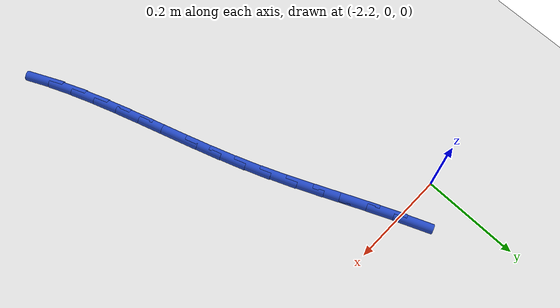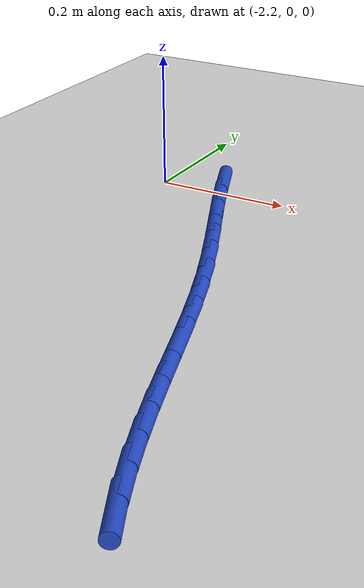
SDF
<sdf version="1.6">
 <world name="default">
  <model name="ground_plane">
   <static>1</static>
   <link name="link">
    <collision name="collision">
     <geometry><plane><normal>0 0 1</normal><size>100 100</size></plane></geometry>
     <surface><friction><ode><mu>100</mu><mu2>50</mu2></ode></friction></surface>
    </collision>
    <visual name="visual">
     <cast_shadows>0</cast_shadows>
     <geometry><plane><normal>0 0 1</normal><size>100 100</size></plane></geometry>
     <material>
      <script><uri>file://media/materials/scripts/gazebo.material</uri><name>Gazebo/WhiteGlow</name></script>
     </material>
    </visual>
   </link>
  </model>
  <model name="line">
   <link name="link_66">
    <pose>-2.112408283756555 0.026752530811789133 0.01 0 1.57 -1.1708050457385448</pose>
    <collision name="collision">
     <geometry><cylinder><radius>0.01</radius><length>0.08</length></cylinder></geometry>
    </collision>
    <visual name="visual">
     <material>
      <script><name>Gazebo/Blue</name><uri>file://media/materials/scripts/gazebo.material</uri></script>
     </material>
     <geometry><cylinder><radius>0.01</radius><length>0.08</length></cylinder></geometry>
    </visual>
   </link>
   <link name="link_67">
    <pose>-2.0910808195349517 -0.023692891978353496 0.01 0 1.57 -1.1483778470252872</pose>
    <collision name="collision">
     <geometry><cylinder><radius>0.01</radius><length>0.08</length></cylinder></geometry>
    </collision>
    <visual name="visual">
     <material>
      <script><name>Gazebo/Blue</name><uri>file://media/materials/scripts/gazebo.material</uri></script>
     </material>
     <geometry><cylinder><radius>0.01</radius><length>0.08</length></cylinder></geometry>
    </visual>
   </link>
   <link name="link_68">
    <pose>-2.068343404405174 -0.07427933248753964 0.01 0 1.57 -1.1376688885958848</pose>
    <collision name="collision">
     <geometry><cylinder><radius>0.01</radius><length>0.08</length></cylinder></geometry>
    </collision>
    <visual name="visual">
     <material>
      <script><name>Gazebo/Blue</name><uri>file://media/materials/scripts/gazebo.material</uri></script>
     </material>
     <geometry><cylinder><radius>0.01</radius><length>0.08</length></cylinder></geometry>
    </visual>
   </link>
   <link name="link_69">
    <pose>-2.0449174800324093 -0.12493965011875743 0.01 0 1.57 -1.138255176425947</pose>
    <collision name="collision">
     <geometry><cylinder><radius>0.01</radius><length>0.08</length></cylinder></geometry>
    </collision>
    <visual name="visual">
     <material>
      <script><name>Gazebo/Blue</name><uri>file://media/materials/scripts/gazebo.material</uri></script>
     </material>
     <geometry><cylinder><radius>0.01</radius><length>0.08</length></cylinder></geometry>
    </visual>
   </link>
   <link name="link_70">
    <pose>-2.0215244880818464 -0.17560670427499525 0.01 0 1.57 -1.1501527239462885</pose>
    <collision name="collision">
     <geometry><cylinder><radius>0.01</radius><length>0.08</length></cylinder></geometry>
    </collision>
    <visual name="visual">
     <material>
      <script><name>Gazebo/Blue</name><uri>file://media/materials/scripts/gazebo.material</uri></script>
     </material>
     <geometry><cylinder><radius>0.01</radius><length>0.08</length></cylinder></geometry>
    </visual>
   </link>
   <link name="link_71">
    <pose>-1.9988858702186751 -0.22621335435923895 0.01 0 1.57 -1.1737895319691143</pose>
    <collision name="collision">
     <geometry><cylinder><radius>0.01</radius><length>0.08</length></cylinder></geometry>
    </collision>
    <visual name="visual">
     <material>
      <script><name>Gazebo/Blue</name><uri>file://media/materials/scripts/gazebo.material</uri></script>
     </material>
     <geometry><cylinder><radius>0.01</radius><length>0.08</length></cylinder></geometry>
    </visual>
   </link>
   <link name="link_72">
    <pose>-1.9777215099162366 -0.27669249631231513 0.01 0 1.57 -1.204278527358556</pose>
    <collision name="collision">
     <geometry><cylinder><radius>0.01</radius><length>0.08</length></cylinder></geometry>
    </collision>
    <visual name="visual">
     <material>
      <script><name>Gazebo/Blue</name><uri>file://media/materials/scripts/gazebo.material</uri></script>
     </material>
     <geometry><cylinder><radius>0.01</radius><length>0.08</length></cylinder></geometry>
    </visual>
   </link>
   <link name="link_73">
    <pose>-1.9584161482684783 -0.32698488478516663 0.01 0 1.57 -1.2289819458210067</pose>
    <collision name="collision">
     <geometry><cylinder><radius>0.01</radius><length>0.08</length></cylinder></geometry>
    </collision>
    <visual name="visual">
     <material>
      <script><name>Gazebo/Blue</name><uri>file://media/materials/scripts/gazebo.material</uri></script>
     </material>
     <geometry><cylinder><radius>0.01</radius><length>0.08</length></cylinder></geometry>
    </visual>
   </link>
   <link name="link_74">
    <pose>-1.9406044055292317 -0.37704886391487047 0.01 0 1.57 -1.2456770098731231</pose>
    <collision name="collision">
     <geometry><cylinder><radius>0.01</radius><length>0.08</length></cylinder></geometry>
    </collision>
    <visual name="visual">
     <material>
      <script><name>Gazebo/Blue</name><uri>file://media/materials/scripts/gazebo.material</uri></script>
     </material>
     <geometry><cylinder><radius>0.01</radius><length>0.08</length></cylinder></geometry>
    </visual>
   </link>
   <link name="link_75">
    <pose>-1.9238190367491446 -0.4268451664624209 0.01 0 1.57 -1.2539678176099547</pose>
    <collision name="collision">
     <geometry><cylinder><radius>0.01</radius><length>0.08</length></cylinder></geometry>
    </collision>
    <visual name="visual">
     <material>
      <script><name>Gazebo/Blue</name><uri>file://media/materials/scripts/gazebo.material</uri></script>
     </material>
     <geometry><cylinder><radius>0.01</radius><length>0.08</length></cylinder></geometry>
    </visual>
   </link>
   <link name="link_76">
    <pose>-1.9075927969788649 -0.47633452518881025 0.01 0 1.57 -1.2535704624095692</pose>
    <collision name="collision">
     <geometry><cylinder><radius>0.01</radius><length>0.08</length></cylinder></geometry>
    </collision>
    <visual name="visual">
     <material>
      <script><name>Gazebo/Blue</name><uri>file://media/materials/scripts/gazebo.material</uri></script>
     </material>
     <geometry><cylinder><radius>0.01</radius><length>0.08</length></cylinder></geometry>
    </visual>
   </link>
   <link name="link_77">
    <pose>-1.89145844126904 -0.5254776728550323 0.01 0 1.57 -1.2443064816996503</pose>
    <collision name="collision">
     <geometry><cylinder><radius>0.01</radius><length>0.08</length></cylinder></geometry>
    </collision>
    <visual name="visual">
     <material>
      <script><name>Gazebo/Blue</name><uri>file://media/materials/scripts/gazebo.material</uri></script>
     </material>
     <geometry><cylinder><radius>0.01</radius><length>0.08</length></cylinder></geometry>
    </visual>
   </link>
   <link name="link_78">
    <pose>-1.8749487246703187 -0.5742353422220821 0.01 0 1.57 -1.2261115842214372</pose>
    <collision name="collision">
     <geometry><cylinder><radius>0.01</radius><length>0.08</length></cylinder></geometry>
    </collision>
    <visual name="visual">
     <material>
      <script><name>Gazebo/Blue</name><uri>file://media/materials/scripts/gazebo.material</uri></script>
     </material>
     <geometry><cylinder><radius>0.01</radius><length>0.08</length></cylinder></geometry>
    </visual>
   </link>
   <link name="link_79">
    <pose>-1.8575964022333484 -0.6225682660509511 0.01 0 1.57 -1.1990617838777589</pose>
    <collision name="collision">
     <geometry><cylinder><radius>0.01</radius><length>0.08</length></cylinder></geometry>
    </collision>
    <visual name="visual">
     <material>
      <script><name>Gazebo/Blue</name><uri>file://media/materials/scripts/gazebo.material</uri></script>
     </material>
     <geometry><cylinder><radius>0.01</radius><length>0.08</length></cylinder></geometry>
    </visual>
   </link>
   <link name="link_80">
    <pose>-1.8389342290087773 -0.670437177102634 0.01 0 1.57 -1.163415244760246</pose>
    <collision name="collision">
     <geometry><cylinder><radius>0.01</radius><length>0.08</length></cylinder></geometry>
    </collision>
    <visual name="visual">
     <material>
      <script><name>Gazebo/Blue</name><uri>file://media/materials/scripts/gazebo.material</uri></script>
     </material>
     <geometry><cylinder><radius>0.01</radius><length>0.08</length></cylinder></geometry>
    </visual>
   </link>
   <link name="link_81">
    <pose>-1.8184949600472524 -0.7178028081381238 0.01 0 1.57 -1.1196630414575575</pose>
    <collision name="collision">
     <geometry><cylinder><radius>0.01</radius><length>0.08</length></cylinder></geometry>
    </collision>
    <visual name="visual">
     <material>
      <script><name>Gazebo/Blue</name><uri>file://media/materials/scripts/gazebo.material</uri></script>
     </material>
     <geometry><cylinder><radius>0.01</radius><length>0.08</length></cylinder></geometry>
    </visual>
   </link>
  </model>
 </world>
</sdf>
